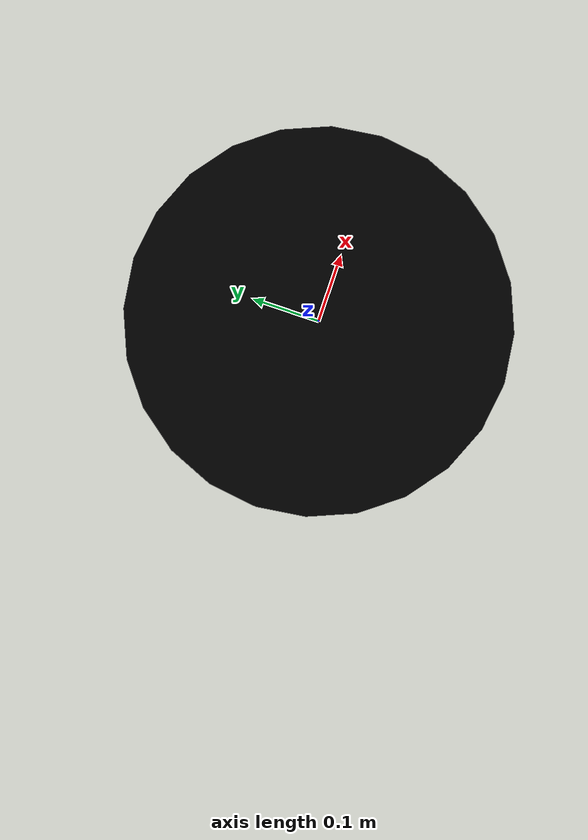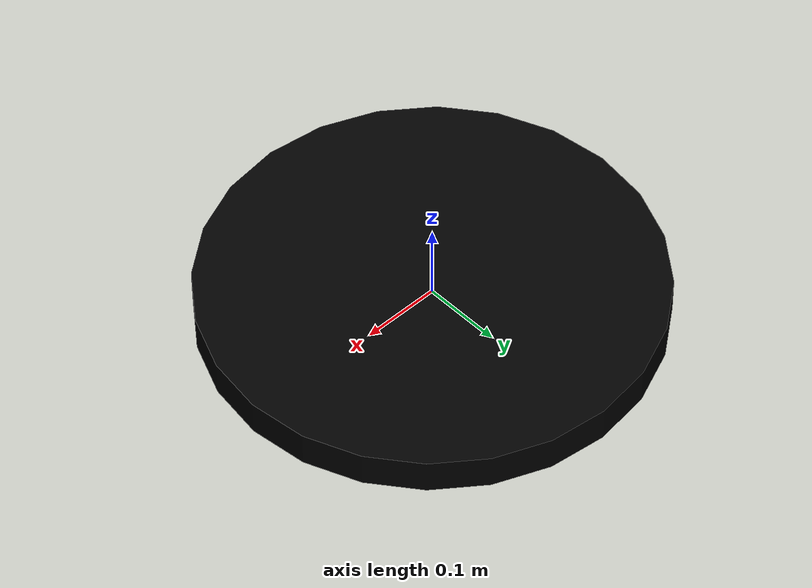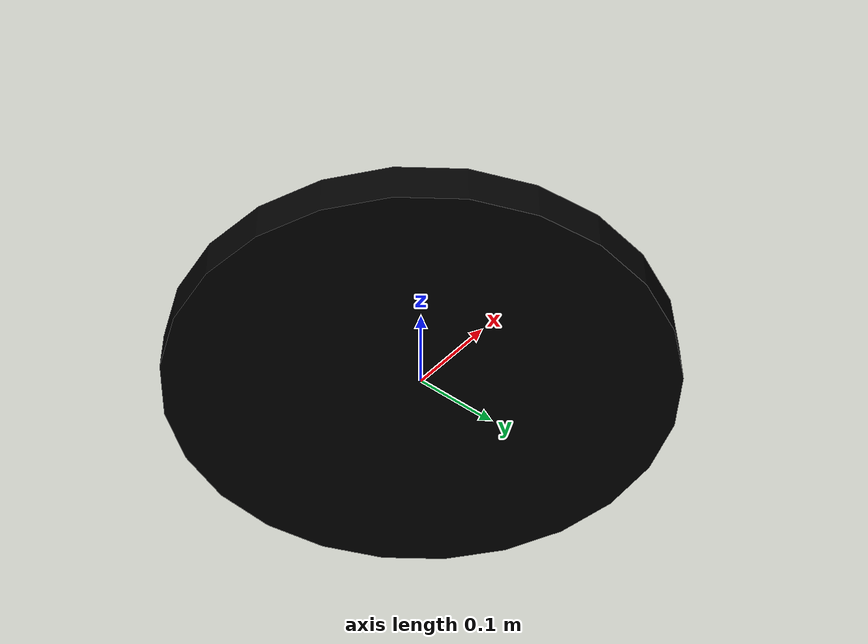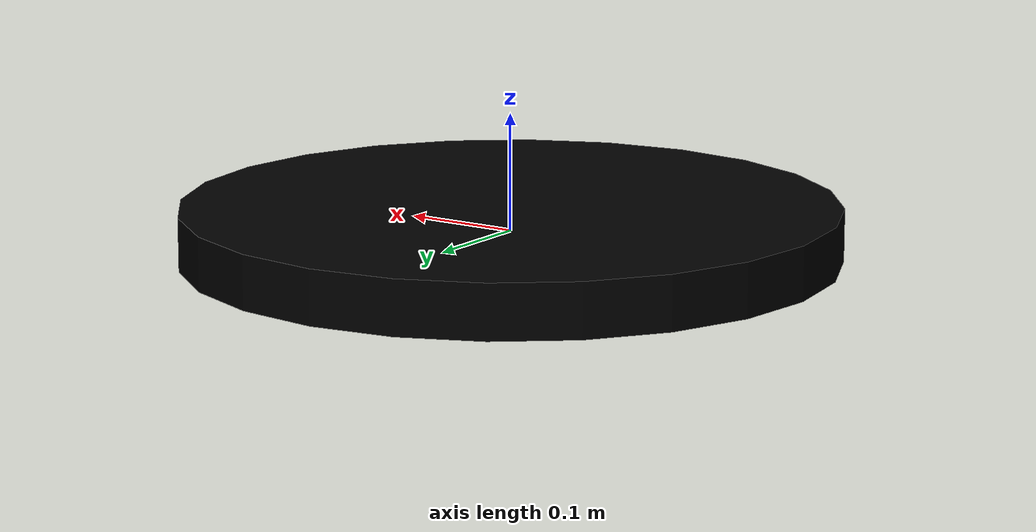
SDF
<?xml version='1.0'?>
<sdf version='1.6'>
  <model name='TESTCYLINDER'>
    <link name='link_0'>
      <inertial>
        <mass>0.0151727</mass>
        <inertia>
          <ixx>0.000298635</ixx>
          <ixy>0</ixy>
          <ixz>0</ixz>
          <iyy>0.000298635</iyy>
          <iyz>0</iyz>
          <izz>0.000591985</izz>
        </inertia>
        <pose frame=''>0 0 0 0 -0 0</pose>
      </inertial>
      <pose frame=''>2e-06 0 0 0 -0 0</pose>
      <visual name='visual'>
        <pose frame=''>0 0 0 0 -0 0</pose>
        <geometry>
          <cylinder>
            <radius>0.279343</radius>
            <length>0.0457156</length>
          </cylinder>
        </geometry>
        <material>
          <lighting>1</lighting>
          <ambient>0 0 0 1</ambient>
          <diffuse>0 0 0 1</diffuse>
          <specular>0 0 0 0</specular>
          <emissive>0 1 0 1</emissive>
        </material>
        <transparency>0</transparency>
        <cast_shadows>1</cast_shadows>
      </visual>
      <collision name='collision'>
        <laser_retro>0</laser_retro>
        <max_contacts>10</max_contacts>
        <pose frame=''>0 0 0 0 -0 0</pose>
        <geometry>
          <cylinder>
            <radius>0.279343</radius>
            <length>0.045716</length>
          </cylinder>
        </geometry>
        <surface>
          <friction>
            <ode>
              <mu>1</mu>
              <mu2>1</mu2>
              <fdir1>0 0 0</fdir1>
              <slip1>0</slip1>
              <slip2>0</slip2>
            </ode>
            <torsional>
              <coefficient>1</coefficient>
              <patch_radius>0</patch_radius>
              <surface_radius>0</surface_radius>
              <use_patch_radius>1</use_patch_radius>
              <ode>
                <slip>0</slip>
              </ode>
            </torsional>
          </friction>
          <bounce>
            <restitution_coefficient>0</restitution_coefficient>
            <threshold>1e+06</threshold>
          </bounce>
          <contact>
            <collide_without_contact>0</collide_without_contact>
            <collide_without_contact_bitmask>1</collide_without_contact_bitmask>
            <collide_bitmask>1</collide_bitmask>
            <ode>
              <soft_cfm>0</soft_cfm>
              <soft_erp>0.2</soft_erp>
              <kp>1e+13</kp>
              <kd>1</kd>
              <max_vel>0.01</max_vel>
              <min_depth>0</min_depth>
            </ode>
            <bullet>
              <split_impulse>1</split_impulse>
              <split_impulse_penetration_threshold>-0.01</split_impulse_penetration_threshold>
              <soft_cfm>0</soft_cfm>
              <soft_erp>0.2</soft_erp>
              <kp>1e+13</kp>
              <kd>1</kd>
            </bullet>
          </contact>
        </surface>
      </collision>
    </link>
    <static>0</static>
    <allow_auto_disable>1</allow_auto_disable>
  </model>
</sdf>
